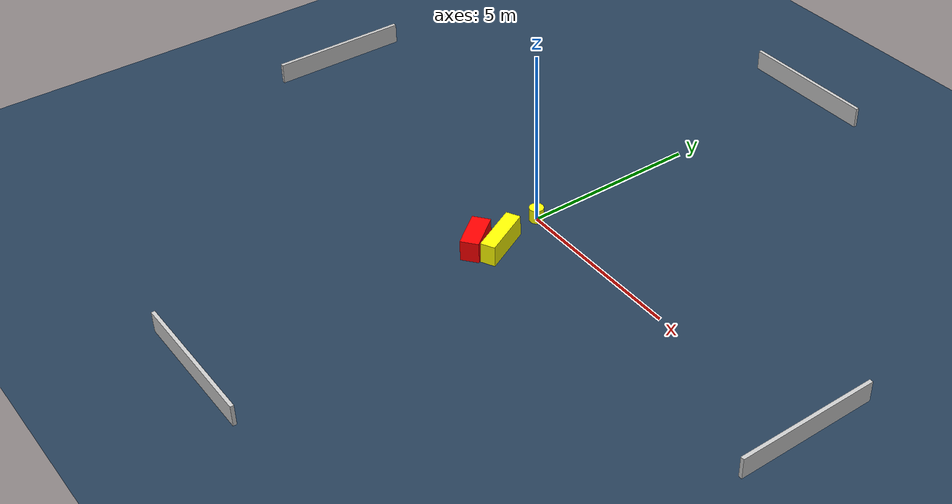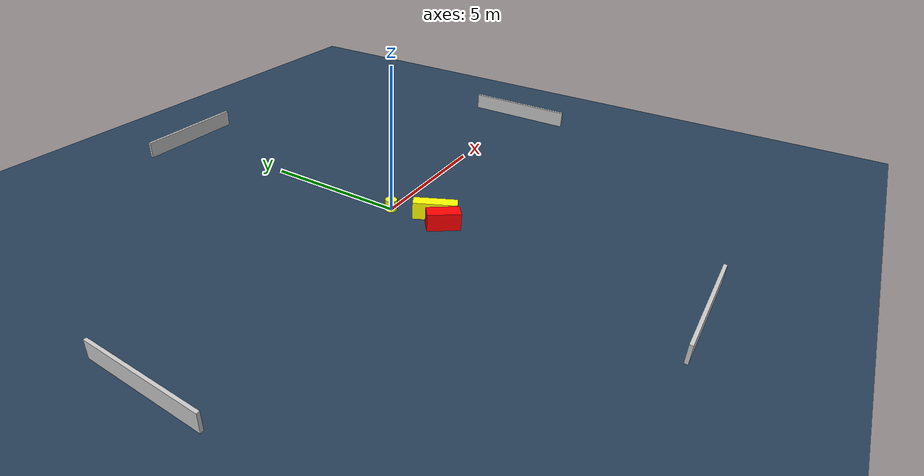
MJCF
<?xml version="1.0" ?>
<mujoco model="generated_environment">
  <option timestep="0.01" integrator="RK4" cone="elliptic"/>
  <default>
    <geom density="1"/>
  </default>
  <asset>
    <texture builtin="gradient" height="3072" name="skybox" rgb1="0.3 0.5 0.7" rgb2="0 0 0" type="skybox" width="512"/>
    <texture builtin="checker" height="300" name="groundplane" rgb1="0.2 0.3 0.4" rgb2="0.1 0.2 0.3" type="2d" width="300"/>
    <material name="groundplane" reflectance="0.2" texrepeat="5 5" texture="groundplane"/>
  </asset>
  <worldbody>
    <light dir="0 0 -1" directional="true" pos="0 0 1.5"/>
    <geom condim="3" friction="0.5 0.005 0.001" material="groundplane" name="floor" pos="0 0 0" size="0 0 0.05" type="plane"/>
    <body name="walls">
      <geom name="wall_1" condim="4" pos="-10.0 0.0 0.3" rgba="0.800000011920929 0.800000011920929 0.800000011920929 1.0" size="0.05 2.0 0.3" type="box"/>
      <geom name="wall_2" condim="4" pos="10.0 0.0 0.3" rgba="0.800000011920929 0.800000011920929 0.800000011920929 1.0" size="0.05 2.0 0.3" type="box"/>
      <geom name="wall_3" condim="4" pos="0.0 -10.0 0.3" rgba="0.800000011920929 0.800000011920929 0.800000011920929 1.0" size="2.0 0.05 0.3" type="box"/>
      <geom name="wall_4" condim="4" pos="0.0 10.0 0.3" rgba="0.800000011920929 0.800000011920929 0.800000011920929 1.0" size="2.0 0.05 0.3" type="box"/>
    </body>
    <body name="robot">
      <joint name="joint_x" type="slide" pos="0 0 0" axis="1 0 0"/>
      <joint name="joint_y" type="slide" pos="0 0 0" axis="0 1 0"/>
      <geom name="robot" type="cylinder" pos="0.0 0.0 0.2" size="0.2 0.2 0.0" mass="5.0" friction="1.0 0.005 0.0001" condim="4" rgba="1.0 1.0 0.0 1.0"/>
    </body>
    <body name="obstacle_1_movable">
      <geom name="obstacle_1_movable" condim="4" pos="0.4200866665319745 -1.468880693717194 0.3" euler="0 0 27.18615018201495" friction="0.0 0.005 0.001" rgba="1.0 1.0 0.0 1.0" size="0.20705864367621382 0.7347237313169475 0.3" type="box" mass="0.1"/>
      <joint type="free"/>
    </body>
    <body name="obstacle_2_static">
      <geom name="obstacle_2_static" condim="4" pos="0.04579665823833244 -1.9951087910710634 0.3" euler="0 0 218.03426671073274" friction="0.0 0.005 0.001" rgba="1.0 0.0 0.0 1.0" size="0.25373586913082385 0.5502820217110262 0.3" type="box"/>
    </body>
  </worldbody>
  <actuator>
    <motor name="actuator_x" joint="joint_x" gear="1" ctrlrange="-1 1"/>
    <motor name="actuator_y" joint="joint_y" gear="1" ctrlrange="-1 1"/>
  </actuator>
</mujoco>
